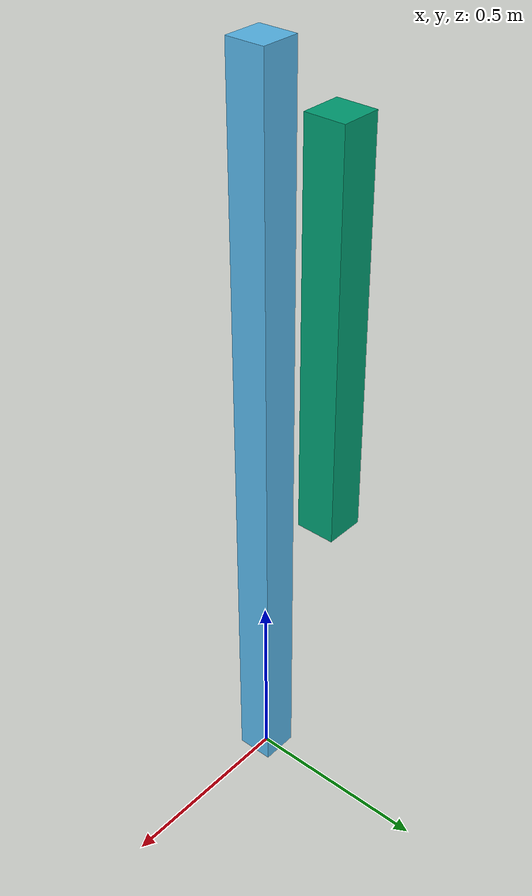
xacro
<?xml version="1.0"?>
<!-- Revolute-Revolute Manipulator -->
<!--
Copied and modified from ROS1 example -
https://github.com/ros-simulation/gazebo_ros_demos/blob/kinetic-devel/rrbot_description/urdf/rrbot.xacro
-->
<robot xmlns:xacro="http://www.ros.org/wiki/xacro" name="2dof_robot">
  <xacro:arg name="prefix" default="" value=""/>

  <!-- Import RRBot macro -->
  <xacro:include filename="$(find 3DOFs_arm)/description/arm_description.urdf.xacro" />

  <!-- Import Rviz colors -->

  <!-- Import RRBot ros2_control description -->
  <xacro:include filename="$(find 3DOFs_arm)/description/arm.ros2_control.xacro" />

  <!-- Used for fixing robot -->
  <link name="world"/>
  <gazebo reference="world">
    <static>true</static>
  </gazebo>

  <xacro:arm parent="world" prefix="$(arg prefix)">
    <origin xyz="0 0 0" rpy="0 0 0" />
  </xacro:arm>

  <xacro:arm_ros2_control name="arm" prefix="$(arg prefix)" />

</robot>

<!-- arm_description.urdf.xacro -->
<robot xmlns:xacro="http://www.ros.org/wiki/xacro">
    <xacro:macro name="arm" params="parent prefix *origin">
        <!-- Constants for robot dimensions -->
        <xacro:property name="mass" value="1" /> <!-- arbitrary value for mass -->
        <xacro:property name="width" value="0.1" /> <!-- Square dimensions (widthxwidth) of beams -->
        <xacro:property name="height1" value="2" /> <!-- Link 1 -->
        <xacro:property name="height2" value="1" /> <!-- Link 2 -->
        <xacro:property name="offset" value="0.05" />

        <joint name="${prefix}base" type="fixed">
            <xacro:insert_block name="origin" />
            <parent link="${parent}" />
            <child link="${prefix}arm1"/>
        </joint>

        <link name="${prefix}arm1">
            <collision>
                <origin xyz="0 0 ${height1 / 2}" rpy="0 0 0"/>
                <geometry>
                    <box size="${width} ${width} ${height1}"/>
                </geometry>
            </collision>

            <visual>
                <origin xyz="0 0 ${height1 / 2}" rpy="0 0 0"/>
                <geometry>
                    <box size="${width} ${width} ${height1}"/>
                </geometry>
            </visual>

            <interial>
                <origin xyz="0 0 ${height1 / 2}"/>
                <mass value="${mass}" />
                <inertia ixx="${mass / 12 * (width*width + height1*height1)}" ixy="0.0" ixz="0.0" iyy="{mass / 12 * (width*width + height1*height1)}" iyz="0.0" izz="{mass / 12 * 2*width*width}"/>
            </interial>
        </link>

        <joint name="${prefix}joint1" type="revolute">
            <parent link="${prefix}arm1"/>
            <child link="${prefix}arm2"/>
            <origin xyz="0 ${width} ${height1 / 2 - offset}"/>
            <axis xyz="0.0 1.0 0.0"/>
            <dynamics damping="0.7"/>
        </joint>

        <link name="${prefix}arm2">
            <collision>
                <origin xyz="0 ${width} ${height2 / 2 - offset}" rpy="0 0 0"/>
                <geometry>
                    <box size="${width} ${width} ${height2}"/>
                </geometry>
            </collision>

            <visual>
                <origin xyz="0 ${width} ${height2 / 2 -offset}" rpy="0 0 0"/>
                <geometry>
                    <box size="${width} ${width} ${height2}"/>
                </geometry>
            </visual>

            <interial>
                <origin xyz="0 0 ${height2}"/>
                <mass value="${mass}" />
                <inertia ixx="${mass / 12 * (width*width + height2*height2)}" ixy="0.0" ixz="0.0" iyy="{mass / 12 * (width*width + height2*height2)}" iyz="0.0" izz="{mass / 12 * 2*width*width}"/>
            </interial>
        </link>
    </xacro:macro>
</robot>
